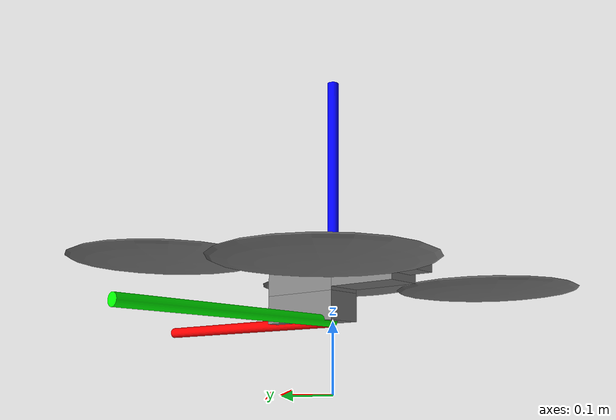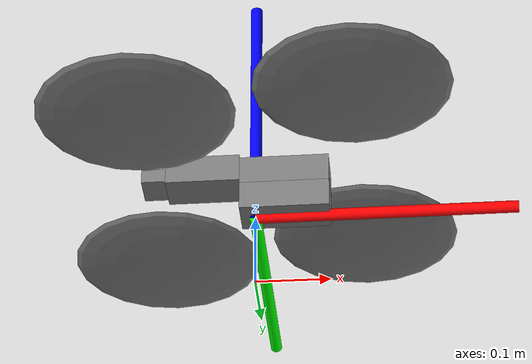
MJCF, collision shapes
<mujoco model="Skydio X2">
  <compiler autolimits="true" assetdir="assets"/>

  <option timestep="0.01" density="1.225" viscosity="1.8e-5"/>

  <default>
    <default class="x2">
      <geom mass="0"/>
      <motor ctrlrange="0 13"/>
      <mesh scale="0.01 0.01 0.01"/>

      <default class="visual">
        <geom group="2" type="mesh" contype="0" conaffinity="0"/>
      </default>

      <default class="collision">
        <geom group="3" type="box"/>
        <default class="rotor">
          <geom type="ellipsoid" size=".13 .13 .01"/>
        </default>
      </default>

      <site group="5"/>
    </default>
  </default>

  <asset>
    <texture type="2d" file="X2_lowpoly_texture_SpinningProps_1024.png"/>
    <material name="phong3SG" texture="X2_lowpoly_texture_SpinningProps_1024"/>
    <material name="invisible" rgba="0 0 0 0"/>

    <mesh class="x2" file="X2_lowpoly.obj"/>
  </asset>

  <worldbody>
    <light name="spotlight" mode="targetbodycom" target="x2" pos="0 -1 2"/>

    <body name="x2" pos="0 0 0.1" childclass="x2">

      <freejoint/>

      <!-- Camera -->
      <camera name="track"
              pos="-1 0 .5"
              xyaxes="0 -1 0 1 0 2"
              mode="trackcom"/>

      <!-- IMU -->
      <site name="imu" pos="0 0 .02"/>

      <!-- X2 BODY MODEL              -->

      <geom material="phong3SG"
            mesh="X2_lowpoly"
            class="visual"
            quat="0 0 1 1"/>

      <geom class="collision"
            size=".06 .027 .02"
            pos=".04 0 .02"/>

      <geom class="collision"
            size=".06 .027 .02"
            pos=".04 0 .06"/>

      <geom class="collision"
            size=".05 .027 .02"
            pos="-.07 0 .065"/>

      <geom class="collision"
            size=".023 .017 .01"
            pos="-.137 .008 .065"
            quat="1 0 0 1"/>

      <!-- Rotors -->
      <geom name="rotor1"
            class="rotor"
            pos="-.14 -.18 .05"
            mass=".25"/>

      <geom name="rotor2"
            class="rotor"
            pos="-.14 .18 .05"
            mass=".25"/>

      <geom name="rotor3"
            class="rotor"
            pos=".14 .18 .08"
            mass=".25"/>

      <geom name="rotor4"
            class="rotor"
            pos=".14 -.18 .08"
            mass=".25"/>

      <geom size=".16 .04 .02"
            pos="0 0 0.02"
            type="ellipsoid"
            mass=".325"
            class="visual"
            material="invisible"/>

      <!-- BODY REFERENCE FRAME               -->

      <!-- X_B : Forward direction -->
      <geom name="body_axis_x"
            type="cylinder"
            fromto="0 0 0 0.35 0 0"
            size="0.008"
            rgba="1 0 0 1"
            contype="0"
            conaffinity="0"/>

      <!-- Y_B : Lateral direction -->
      <geom name="body_axis_y"
            type="cylinder"
            fromto="0 0 0 0 0.35 0"
            size="0.008"
            rgba="0 1 0 1"
            contype="0"
            conaffinity="0"/>

      <!-- Z_B : Upward direction -->
      <geom name="body_axis_z"
            type="cylinder"
            fromto="0 0 0 0 0 0.35"
            size="0.008"
            rgba="0 0 1 1"
            contype="0"
            conaffinity="0"/>

      <!-- Thrust sites -->
      <site name="thrust1" pos="-.14 -.18 .05"/>
      <site name="thrust2" pos="-.14 .18 .05"/>
      <site name="thrust3" pos=".14 .18 .08"/>
      <site name="thrust4" pos=".14 -.18 .08"/>

    </body>
  </worldbody>

  <!-- MOTORS                     -->

  <actuator>
    <motor class="x2"
           name="thrust1"
           site="thrust1"
           gear="0 0 1 0 0 -.0201"/>

    <motor class="x2"
           name="thrust2"
           site="thrust2"
           gear="0 0 1 0 0 .0201"/>

    <motor class="x2"
           name="thrust3"
           site="thrust3"
           gear="0 0 1 0 0 -.0201"/>

    <motor class="x2"
           name="thrust4"
           site="thrust4"
           gear="0 0 1 0 0 .0201"/>
  </actuator>

  <!-- SENSORS                    -->

  <sensor>
    <gyro name="body_gyro"
          site="imu"/>

    <accelerometer name="body_linacc"
                   site="imu"/>

    <framequat name="body_quat"
               objtype="site"
               objname="imu"/>
  </sensor>

  <!-- HOVER KEYFRAME              -->

  <keyframe>
    <key name="hover"
         qpos="0 0 .3 1 0 0 0"
         ctrl="3.2495625 3.2495625 3.2495625 3.2495625"/>
  </keyframe>

</mujoco>
